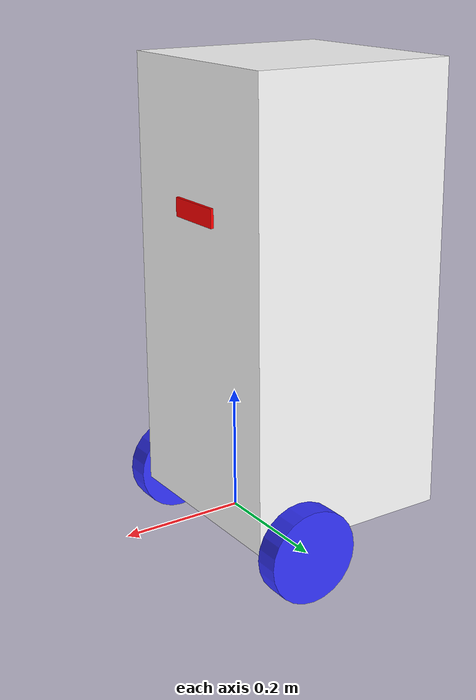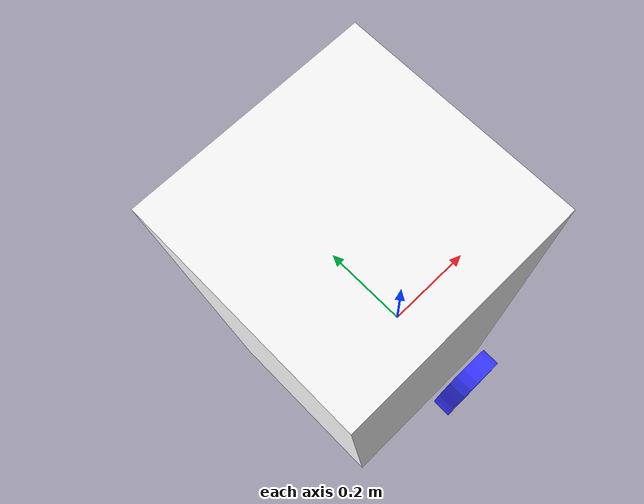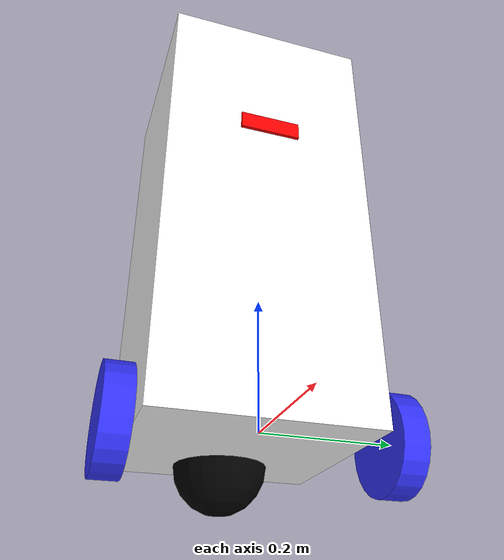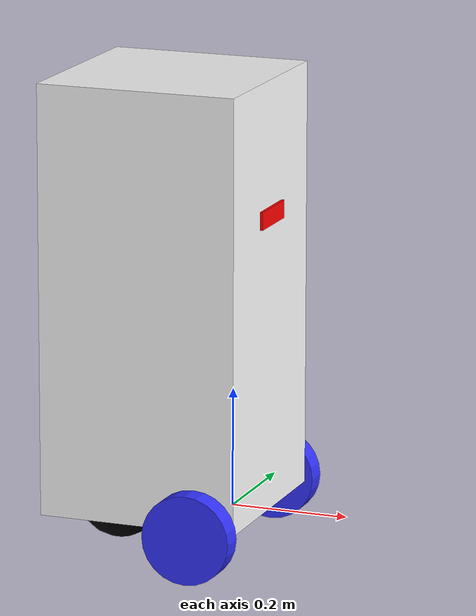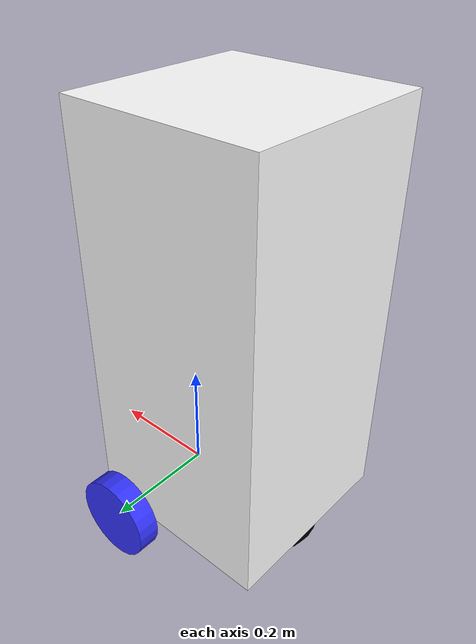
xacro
<?xml version="1.0"?>
<robot xmlns:xacro="http://www.ros.org/wiki/xacro"  name="robot">

    <xacro:include filename="robot_core_new.xacro" />

    <xacro:include filename="gazebo_control.xacro"/>
    <xacro:include filename="depth_camera.xacro"/>
    <xacro:include filename="lidar.xacro"/>
</robot>

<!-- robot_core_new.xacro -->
<robot xmlns:xacro="http://www.ros.org/wiki/xacro" >

    <xacro:include filename="inertial_macros.xacro"/>

    <material name="white">
        <color rgba="1 1 1 1" />
    </material>

    <material name="orange">
        <color rgba="1 0.3 0.1 1"/>
    </material>

    <material name="blue">
        <color rgba="0.2 0.2 1 1"/>
    </material>

    <material name="black">
        <color rgba="0 0 0 1"/>
    </material>

    <material name="red">
        <color rgba="1 0 0 1"/>
    </material>

    <!-- BASE LINK -->

    <link name="base_link">

    </link>

    <!-- CHASSIS LINK -->

    <joint name="chassis_joint" type="fixed">
        <parent link="base_link"/>
        <child link="chassis"/>
        <origin xyz="-0.275 0 0"/>  <!-- origin behind base link -->
    </joint>

    <link name="chassis">
        <visual>  <!-- สร้างแบบจำลองที่เห็นในโปรแกรม -->
            <origin xyz="0.17 0 0.3625"/>  <!-- ตั้ง origin ใหม่ -->
            <geometry>
                <box size="0.34 0.34 0.725"/>  <!-- size in meter -->
            </geometry>
            <material name="white"/>  <!-- set color to white-->
        </visual>
        <collision>  <!-- สร้างแบบจำลองที่เห็นในโปรแกรม -->
            <origin xyz="0.17 0 0.1"/>  <!-- ตั้ง origin ใหม่ -->
            <geometry>
                <box size="0.34 0.34 0.2"/>  <!-- size in meter -->
            </geometry>
        </collision>
        <xacro:inertial_box mass="0.5" x="0.34" y="0.34" z="0.2">
            <origin xyz="0.17 0 0.1" rpy="0 0 0"/>
        </xacro:inertial_box>
    </link>

    <gazebo reference = "chassis">
        <material>Gazebo/White</material>
    </gazebo>

    <!-- LEFT WHEEL LINK -->

    <joint name="left_wheel_joint" type="continuous">
        <parent link="base_link"/>
        <child link="left_wheel"/>
        <origin xyz="0 0.2 0" rpy="-${pi/2} 0 0" />  <!-- rpy ใช้สั่งให้แกน origin หมุน-->
        <axis xyz="0 0 1"/>  <!-- ตั้งแกนในการเคลื่อนที่ของล้อเป็น +z -->
    </joint>
    <link name="left_wheel">
        <visual>
            <geometry>
                <cylinder radius="0.075" length="0.04"/>
            </geometry>
            <material name="blue"/>
        </visual>
        <collision>
            <geometry>
                <cylinder radius="0.075" length="0.04"/>
            </geometry>
        </collision>
        <xacro:inertial_cylinder mass="0.5" length="0.04" radius="0.15">
            <origin xzy="0 0 0" rpy="0 0 0"/>
        </xacro:inertial_cylinder>
    </link>

    <gazebo reference="left_wheel">
        <material>Gazebo/Blue</material>
    </gazebo>

    <!-- RIGHT WHEEL LINK -->

    <joint name="right_wheel_joint" type="continuous">
        <parent link="base_link"/>
        <child link="right_wheel"/>
        <origin xyz="0 -0.2 0" rpy="${pi/2} 0 0" />
        <axis xyz="0 0 -1"/>
    </joint>
    <link name="right_wheel">
        <visual>
            <geometry>
                <cylinder radius="0.075" length="0.04"/>
            </geometry>
            <material name="blue"/>
        </visual>
        <collision>
            <geometry>
                <cylinder radius="0.075" length="0.04"/>
            </geometry>
        </collision>
        <xacro:inertial_cylinder mass="0.5" length="0.04" radius="0.15">
            <origin xzy="0 0 0" rpy="0 0 0"/>
        </xacro:inertial_cylinder>
    </link>

    <gazebo reference="right_wheel">
        <material>Gazebo/Blue</material>
    </gazebo>

    <!-- CASTER WHEEL LINK -->

    <joint name="caster_wheel_joint" type="fixed">
        <parent link="chassis"/>
        <child link="caster_wheel"/>
        <origin xyz="0.075 0 0"/>
    </joint>

    <link name="caster_wheel">
        <visual>
            <geometry>
                <sphere radius="0.075"/>
            </geometry>
            <material name="black"/>
        </visual>
        <collision>
            <geometry>
                <sphere radius="0.075"/>
            </geometry>
        </collision>
        <xacro:inertial_sphere mass="0.5" radius="0.15">
            <origin xyz="0 0 0" rpy="0 0 0"/>
        </xacro:inertial_sphere>
    </link>

    <gazebo reference="caster_wheel">
        <material>Gazebo/Black</material>
        <mu1 value="0.001"/>
        <mu2 value="0.001"/>
    </gazebo>

</robot>

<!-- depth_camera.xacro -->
<robot xmlns:xacro="http://www.ros.org/wiki/xacro">

    <joint name="camera_joint" type="fixed">
        <parent link="chassis" />
        <child link="camera_link" />
        <origin xyz="0.34 0 0.5" rpy="0 0 0" />
    </joint>

    <link name="camera_link">
        <visual>
            <geometry>
                <box size="0.010 0.1 0.03" />
            </geometry>
            <material name="red" />
        </visual>
    </link>

    <joint name="camera_optical_joint" type="fixed">
        <parent link="camera_link" />
        <child link="camera_link_optical" />
        <origin xyz="0 0 0" rpy="${-pi/2} 0 ${-pi/2}" />
    </joint>

    <link name="camera_link_optical"></link>

    <gazebo reference="camera_link">
        <material>Gazebo/Red</material>

        <sensor name="camera" type="depth">
            <pose> 0 0 0 0 0 0 </pose>
            <visualize>true</visualize>
            <update_rate>10</update_rate>
            <camera>
                <horizontal_fov>1.089</horizontal_fov>
                <image>
                    <format>B8G8R8</format>
                    <width>640</width>
                    <height>480</height>
                </image>
                <clip>
                    <near>0.05</near>
                    <far>8.0</far>
                </clip>
            </camera>
            <plugin name="camera_controller" filename="libgazebo_ros_camera.so">
                <frame_name>camera_link_optical</frame_name>
                <min_depth>0.1</min_depth>
                <max_depth>100</max_depth>
            </plugin>
        </sensor>
    </gazebo>

</robot>

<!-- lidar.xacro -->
<robot xmlns:xacro="http://www.ros.org/wiki/xacro" >

    <joint name="laser_joint" type="fixed">
        <parent link="chassis"/>
        <child link="laser_frame"/>
        <origin xyz="0.17 0 0.2" rpy="0 0 0"/>
    </joint>

    <link name="laser_frame">
        <visual>
            <geometry>
                <cylinder radius="0.05" length="0.04"/>
            </geometry>
            <material name="red"/>
        </visual>
        <collision>
            <geometry>
                <cylinder radius="0.05" length="0.04"/>
            </geometry>
        </collision>
        <xacro:inertial_cylinder mass="0.1" length="0.04" radius="0.05">
            <origin xyz="0 0 0" rpy="0 0 0"/>
        </xacro:inertial_cylinder>
    </link>

    <gazebo reference="laser_frame">
        <material>Gazebo/Red</material>

        <sensor name="laser" type="ray">
            <pose> 0 0 0 0 0 0 </pose>
            <visualize>true</visualize>
            <update_rate>10</update_rate>
            <ray>
                <scan>
                    <horizontal>
                        <samples>360</samples>
                        <min_angle>-3.14</min_angle>
                        <max_angle>3.14</max_angle>
                    </horizontal>
                </scan>
                <range>
                    <min>0.3</min>
                    <max>12</max>
                </range>
            </ray>
            <plugin name="laser_controller" filename="libgazebo_ros_ray_sensor.so">
                <ros>
                    <argument>~/out:=scan</argument>
                </ros>
                <output_type>sensor_msgs/LaserScan</output_type>
                <frame_name>laser_frame</frame_name>
            </plugin>
        </sensor>
    </gazebo>

</robot>
